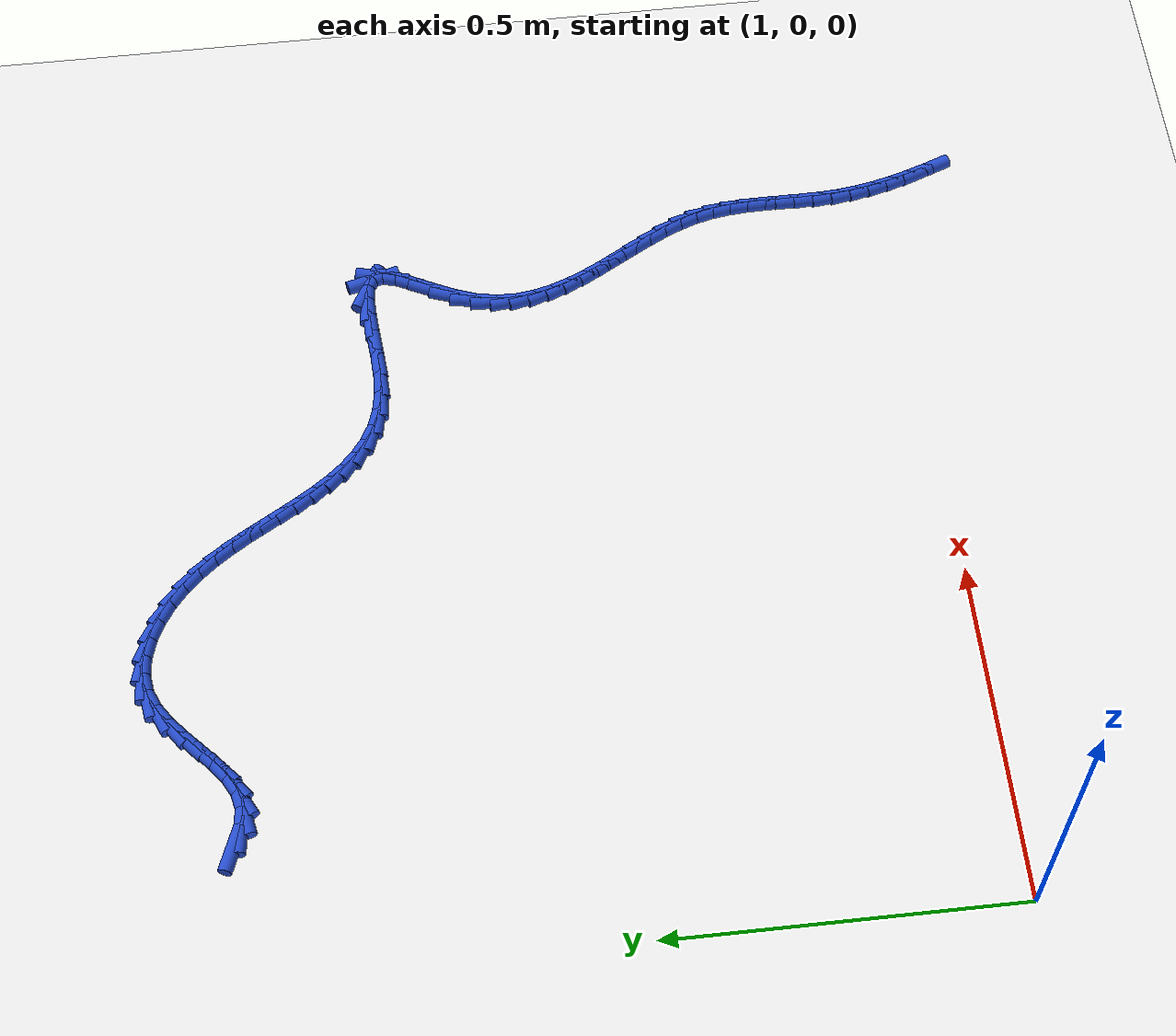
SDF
<sdf version="1.6">
 <world name="default">
  <model name="ground_plane">
   <static>1</static>
   <link name="link">
    <collision name="collision">
     <geometry><plane><normal>0 0 1</normal><size>100 100</size></plane></geometry>
     <surface><friction><ode><mu>100</mu><mu2>50</mu2></ode></friction></surface>
    </collision>
    <visual name="visual">
     <cast_shadows>0</cast_shadows>
     <geometry><plane><normal>0 0 1</normal><size>100 100</size></plane></geometry>
     <material>
      <script><uri>file://media/materials/scripts/gazebo.material</uri><name>Gazebo/WhiteGlow</name></script>
     </material>
    </visual>
   </link>
  </model>
  <model name="line">
   <link name="link_66">
    <pose>1.1910183618027324 1.0386540105592135 0.01 0 1.57 -0.3715931306546923</pose>
    <collision name="collision">
     <geometry><cylinder><radius>0.01</radius><length>0.08</length></cylinder></geometry>
    </collision>
    <visual name="visual">
     <material>
      <script><name>Gazebo/Blue</name><uri>file://media/materials/scripts/gazebo.material</uri></script>
     </material>
     <geometry><cylinder><radius>0.01</radius><length>0.08</length></cylinder></geometry>
    </visual>
   </link>
   <link name="link_67">
    <pose>1.2167984841323702 1.0286075717991898 0.01 0 1.57 -0.13413319737967627</pose>
    <collision name="collision">
     <geometry><cylinder><radius>0.01</radius><length>0.08</length></cylinder></geometry>
    </collision>
    <visual name="visual">
     <material>
      <script><name>Gazebo/Blue</name><uri>file://media/materials/scripts/gazebo.material</uri></script>
     </material>
     <geometry><cylinder><radius>0.01</radius><length>0.08</length></cylinder></geometry>
    </visual>
   </link>
   <link name="link_68">
    <pose>1.2416910758406217 1.0252484794003158 0.01 0 1.57 0.20399295976134277</pose>
    <collision name="collision">
     <geometry><cylinder><radius>0.01</radius><length>0.08</length></cylinder></geometry>
    </collision>
    <visual name="visual">
     <material>
      <script><name>Gazebo/Blue</name><uri>file://media/materials/scripts/gazebo.material</uri></script>
     </material>
     <geometry><cylinder><radius>0.01</radius><length>0.08</length></cylinder></geometry>
    </visual>
   </link>
   <link name="link_69">
    <pose>1.2654495829845958 1.0301634127264439 0.01 0 1.57 0.4839980641135124</pose>
    <collision name="collision">
     <geometry><cylinder><radius>0.01</radius><length>0.08</length></cylinder></geometry>
    </collision>
    <visual name="visual">
     <material>
      <script><name>Gazebo/Blue</name><uri>file://media/materials/scripts/gazebo.material</uri></script>
     </material>
     <geometry><cylinder><radius>0.01</radius><length>0.08</length></cylinder></geometry>
    </visual>
   </link>
   <link name="link_70">
    <pose>1.2882910963571448 1.0421712683179045 0.01 0 1.57 0.6521079023328774</pose>
    <collision name="collision">
     <geometry><cylinder><radius>0.01</radius><length>0.08</length></cylinder></geometry>
    </collision>
    <visual name="visual">
     <material>
      <script><name>Gazebo/Blue</name><uri>file://media/materials/scripts/gazebo.material</uri></script>
     </material>
     <geometry><cylinder><radius>0.01</radius><length>0.08</length></cylinder></geometry>
    </visual>
   </link>
   <link name="link_71">
    <pose>1.3105832693853003 1.0591921410235174 0.01 0 1.57 0.7341628290892473</pose>
    <collision name="collision">
     <geometry><cylinder><radius>0.01</radius><length>0.08</length></cylinder></geometry>
    </collision>
    <visual name="visual">
     <material>
      <script><name>Gazebo/Blue</name><uri>file://media/materials/scripts/gazebo.material</uri></script>
     </material>
     <geometry><cylinder><radius>0.01</radius><length>0.08</length></cylinder></geometry>
    </visual>
   </link>
   <link name="link_72">
    <pose>1.3326938348922361 1.079145651727313 0.01 0 1.57 0.7508217838398705</pose>
    <collision name="collision">
     <geometry><cylinder><radius>0.01</radius><length>0.08</length></cylinder></geometry>
    </collision>
    <visual name="visual">
     <material>
      <script><name>Gazebo/Blue</name><uri>file://media/materials/scripts/gazebo.material</uri></script>
     </material>
     <geometry><cylinder><radius>0.01</radius><length>0.08</length></cylinder></geometry>
    </visual>
   </link>
   <link name="link_73">
    <pose>1.3549905257011259 1.0999514213133232 0.01 0 1.57 0.7084109012326739</pose>
    <collision name="collision">
     <geometry><cylinder><radius>0.01</radius><length>0.08</length></cylinder></geometry>
    </collision>
    <visual name="visual">
     <material>
      <script><name>Gazebo/Blue</name><uri>file://media/materials/scripts/gazebo.material</uri></script>
     </material>
     <geometry><cylinder><radius>0.01</radius><length>0.08</length></cylinder></geometry>
    </visual>
   </link>
   <link name="link_74">
    <pose>1.3778410746351433 1.1195290706655772 0.01 0 1.57 0.6001648621683521</pose>
    <collision name="collision">
     <geometry><cylinder><radius>0.01</radius><length>0.08</length></cylinder></geometry>
    </collision>
    <visual name="visual">
     <material>
      <script><name>Gazebo/Blue</name><uri>file://media/materials/scripts/gazebo.material</uri></script>
     </material>
     <geometry><cylinder><radius>0.01</radius><length>0.08</length></cylinder></geometry>
    </visual>
   </link>
   <link name="link_75">
    <pose>1.4016132145174631 1.1357982206681072 0.01 0 1.57 0.4095901310267011</pose>
    <collision name="collision">
     <geometry><cylinder><radius>0.01</radius><length>0.08</length></cylinder></geometry>
    </collision>
    <visual name="visual">
     <material>
      <script><name>Gazebo/Blue</name><uri>file://media/materials/scripts/gazebo.material</uri></script>
     </material>
     <geometry><cylinder><radius>0.01</radius><length>0.08</length></cylinder></geometry>
    </visual>
   </link>
   <link name="link_76">
    <pose>1.4266746741748833 1.1466785029190596 0.01 0 1.57 0.14798488247998606</pose>
    <collision name="collision">
     <geometry><cylinder><radius>0.01</radius><length>0.08</length></cylinder></geometry>
    </collision>
    <visual name="visual">
     <material>
      <script><name>Gazebo/Blue</name><uri>file://media/materials/scripts/gazebo.material</uri></script>
     </material>
     <geometry><cylinder><radius>0.01</radius><length>0.08</length></cylinder></geometry>
    </visual>
   </link>
   <link name="link_77">
    <pose>1.4531910620310113 1.1506314253849277 0.01 0 1.57 -0.09168752158299566</pose>
    <collision name="collision">
     <geometry><cylinder><radius>0.01</radius><length>0.08</length></cylinder></geometry>
    </collision>
    <visual name="visual">
     <material>
      <script><name>Gazebo/Blue</name><uri>file://media/materials/scripts/gazebo.material</uri></script>
     </material>
     <geometry><cylinder><radius>0.01</radius><length>0.08</length></cylinder></geometry>
    </visual>
   </link>
   <link name="link_78">
    <pose>1.4805841235058557 1.1481127617103806 0.01 0 1.57 -0.28543511425418</pose>
    <collision name="collision">
     <geometry><cylinder><radius>0.01</radius><length>0.08</length></cylinder></geometry>
    </collision>
    <visual name="visual">
     <material>
      <script><name>Gazebo/Blue</name><uri>file://media/materials/scripts/gazebo.material</uri></script>
     </material>
     <geometry><cylinder><radius>0.01</radius><length>0.08</length></cylinder></geometry>
    </visual>
   </link>
   <link name="link_79">
    <pose>1.5081045207154684 1.140036952740264 0.01 0 1.57 -0.4416807370855802</pose>
    <collision name="collision">
     <geometry><cylinder><radius>0.01</radius><length>0.08</length></cylinder></geometry>
    </collision>
    <visual name="visual">
     <material>
      <script><name>Gazebo/Blue</name><uri>file://media/materials/scripts/gazebo.material</uri></script>
     </material>
     <geometry><cylinder><radius>0.01</radius><length>0.08</length></cylinder></geometry>
    </visual>
   </link>
   <link name="link_80">
    <pose>1.5350029157759055 1.1273184393194247 0.01 0 1.57 -0.5723493183631833</pose>
    <collision name="collision">
     <geometry><cylinder><radius>0.01</radius><length>0.08</length></cylinder></geometry>
    </collision>
    <visual name="visual">
     <material>
      <script><name>Gazebo/Blue</name><uri>file://media/materials/scripts/gazebo.material</uri></script>
     </material>
     <geometry><cylinder><radius>0.01</radius><length>0.08</length></cylinder></geometry>
    </visual>
   </link>
   <link name="link_81">
    <pose>1.5605299708032205 1.110871662292709 0.01 0 1.57 -0.6884382442593434</pose>
    <collision name="collision">
     <geometry><cylinder><radius>0.01</radius><length>0.08</length></cylinder></geometry>
    </collision>
    <visual name="visual">
     <material>
      <script><name>Gazebo/Blue</name><uri>file://media/materials/scripts/gazebo.material</uri></script>
     </material>
     <geometry><cylinder><radius>0.01</radius><length>0.08</length></cylinder></geometry>
    </visual>
   </link>
   <link name="link_82">
    <pose>1.5839458589698256 1.0916070858261908 0.01 0 1.57 -0.7934648081408842</pose>
    <collision name="collision">
     <geometry><cylinder><radius>0.01</radius><length>0.08</length></cylinder></geometry>
    </collision>
    <visual name="visual">
     <material>
      <script><name>Gazebo/Blue</name><uri>file://media/materials/scripts/gazebo.material</uri></script>
     </material>
     <geometry><cylinder><radius>0.01</radius><length>0.08</length></cylinder></geometry>
    </visual>
   </link>
   <link name="link_83">
    <pose>1.6049663762186324 1.07024467312244 0.01 0 1.57 -0.8808923579072564</pose>
    <collision name="collision">
     <geometry><cylinder><radius>0.01</radius><length>0.08</length></cylinder></geometry>
    </collision>
    <visual name="visual">
     <material>
      <script><name>Gazebo/Blue</name><uri>file://media/materials/scripts/gazebo.material</uri></script>
     </material>
     <geometry><cylinder><radius>0.01</radius><length>0.08</length></cylinder></geometry>
    </visual>
   </link>
   <link name="link_84">
    <pose>1.6239543033740718 1.0472338757869752 0.01 0 1.57 -0.9489089492983109</pose>
    <collision name="collision">
     <geometry><cylinder><radius>0.01</radius><length>0.08</length></cylinder></geometry>
    </collision>
    <visual name="visual">
     <material>
      <script><name>Gazebo/Blue</name><uri>file://media/materials/scripts/gazebo.material</uri></script>
     </material>
     <geometry><cylinder><radius>0.01</radius><length>0.08</length></cylinder></geometry>
    </visual>
   </link>
   <link name="link_85">
    <pose>1.6413216860974906 1.0230035472473766 0.01 0 1.57 -0.997370352363694</pose>
    <collision name="collision">
     <geometry><cylinder><radius>0.01</radius><length>0.08</length></cylinder></geometry>
    </collision>
    <visual name="visual">
     <material>
      <script><name>Gazebo/Blue</name><uri>file://media/materials/scripts/gazebo.material</uri></script>
     </material>
     <geometry><cylinder><radius>0.01</radius><length>0.08</length></cylinder></geometry>
    </visual>
   </link>
   <link name="link_86">
    <pose>1.6574805700502366 0.9979825409312242 0.01 0 1.57 -1.026540679589571</pose>
    <collision name="collision">
     <geometry><cylinder><radius>0.01</radius><length>0.08</length></cylinder></geometry>
    </collision>
    <visual name="visual">
     <material>
      <script><name>Gazebo/Blue</name><uri>file://media/materials/scripts/gazebo.material</uri></script>
     </material>
     <geometry><cylinder><radius>0.01</radius><length>0.08</length></cylinder></geometry>
    </visual>
   </link>
   <link name="link_87">
    <pose>1.6728430008936561 0.9725997102660979 0.01 0 1.57 -1.036541221692808</pose>
    <collision name="collision">
     <geometry><cylinder><radius>0.01</radius><length>0.08</length></cylinder></geometry>
    </collision>
    <visual name="visual">
     <material>
      <script><name>Gazebo/Blue</name><uri>file://media/materials/scripts/gazebo.material</uri></script>
     </material>
     <geometry><cylinder><radius>0.01</radius><length>0.08</length></cylinder></geometry>
    </visual>
   </link>
   <link name="link_88">
    <pose>1.6878210242890965 0.9472839086795792 0.01 0 1.57 -1.0270149523643854</pose>
    <collision name="collision">
     <geometry><cylinder><radius>0.01</radius><length>0.08</length></cylinder></geometry>
    </collision>
    <visual name="visual">
     <material>
      <script><name>Gazebo/Blue</name><uri>file://media/materials/scripts/gazebo.material</uri></script>
     </material>
     <geometry><cylinder><radius>0.01</radius><length>0.08</length></cylinder></geometry>
    </visual>
   </link>
   <link name="link_89">
    <pose>1.7028266858979044 0.9224639895992472 0.01 0 1.57 -0.9969708114338279</pose>
    <collision name="collision">
     <geometry><cylinder><radius>0.01</radius><length>0.08</length></cylinder></geometry>
    </collision>
    <visual name="visual">
     <material>
      <script><name>Gazebo/Blue</name><uri>file://media/materials/scripts/gazebo.material</uri></script>
     </material>
     <geometry><cylinder><radius>0.01</radius><length>0.08</length></cylinder></geometry>
    </visual>
   </link>
   <link name="link_90">
    <pose>1.7182720313814273 0.8985688064526828 0.01 0 1.57 -0.9448148069161593</pose>
    <collision name="collision">
     <geometry><cylinder><radius>0.01</radius><length>0.08</length></cylinder></geometry>
    </collision>
    <visual name="visual">
     <material>
      <script><name>Gazebo/Blue</name><uri>file://media/materials/scripts/gazebo.material</uri></script>
     </material>
     <geometry><cylinder><radius>0.01</radius><length>0.08</length></cylinder></geometry>
    </visual>
   </link>
   <link name="link_91">
    <pose>1.7345691064010125 0.8760272126674655 0.01 0 1.57 -0.8686681279111225</pose>
    <collision name="collision">
     <geometry><cylinder><radius>0.01</radius><length>0.08</length></cylinder></geometry>
    </collision>
    <visual name="visual">
     <material>
      <script><name>Gazebo/Blue</name><uri>file://media/materials/scripts/gazebo.material</uri></script>
     </material>
     <geometry><cylinder><radius>0.01</radius><length>0.08</length></cylinder></geometry>
    </visual>
   </link>
   <link name="link_92">
    <pose>1.7521299566180073 0.8552680616711765 0.01 0 1.57 -0.7671700663345805</pose>
    <collision name="collision">
     <geometry><cylinder><radius>0.01</radius><length>0.08</length></cylinder></geometry>
    </collision>
    <visual name="visual">
     <material>
      <script><name>Gazebo/Blue</name><uri>file://media/materials/scripts/gazebo.material</uri></script>
     </material>
     <geometry><cylinder><radius>0.01</radius><length>0.08</length></cylinder></geometry>
    </visual>
   </link>
   <link name="link_93">
    <pose>1.7713666276937572 0.8367202068913953 0.01 0 1.57 -0.6409241412388688</pose>
    <collision name="collision">
     <geometry><cylinder><radius>0.01</radius><length>0.08</length></cylinder></geometry>
    </collision>
    <visual name="visual">
     <material>
      <script><name>Gazebo/Blue</name><uri>file://media/materials/scripts/gazebo.material</uri></script>
     </material>
     <geometry><cylinder><radius>0.01</radius><length>0.08</length></cylinder></geometry>
    </visual>
   </link>
   <link name="link_94">
    <pose>1.792691165289611 0.8208125017557025 0.01 0 1.57 -0.4942716544508214</pose>
    <collision name="collision">
     <geometry><cylinder><radius>0.01</radius><length>0.08</length></cylinder></geometry>
    </collision>
    <visual name="visual">
     <material>
      <script><name>Gazebo/Blue</name><uri>file://media/materials/scripts/gazebo.material</uri></script>
     </material>
     <geometry><cylinder><radius>0.01</radius><length>0.08</length></cylinder></geometry>
    </visual>
   </link>
   <link name="link_95">
    <pose>1.8165156150669155 0.807973799691678 0.01 0 1.57 -0.33611168976586175</pose>
    <collision name="collision">
     <geometry><cylinder><radius>0.01</radius><length>0.08</length></cylinder></geometry>
    </collision>
    <visual name="visual">
     <material>
      <script><name>Gazebo/Blue</name><uri>file://media/materials/scripts/gazebo.material</uri></script>
     </material>
     <geometry><cylinder><radius>0.01</radius><length>0.08</length></cylinder></geometry>
    </visual>
   </link>
   <link name="link_96">
    <pose>1.8432520226870168 0.7986329541269026 0.01 0 1.57 -0.17819803377632554</pose>
    <collision name="collision">
     <geometry><cylinder><radius>0.01</radius><length>0.08</length></cylinder></geometry>
    </collision>
    <visual name="visual">
     <material>
      <script><name>Gazebo/Blue</name><uri>file://media/materials/scripts/gazebo.material</uri></script>
     </material>
     <geometry><cylinder><radius>0.01</radius><length>0.08</length></cylinder></geometry>
    </visual>
   </link>
   <link name="link_97">
    <pose>1.8733124338112628 0.7932188184889559 0.01 0 1.57 -0.03842313870099196</pose>
    <collision name="collision">
     <geometry><cylinder><radius>0.01</radius><length>0.08</length></cylinder></geometry>
    </collision>
    <visual name="visual">
     <material>
      <script><name>Gazebo/Blue</name><uri>file://media/materials/scripts/gazebo.material</uri></script>
     </material>
     <geometry><cylinder><radius>0.01</radius><length>0.08</length></cylinder></geometry>
    </visual>
   </link>
   <link name="link_98">
    <pose>1.9068307222204495 0.7919303064890729 0.01 0 1.57 0.0477360645340267</pose>
    <collision name="collision">
     <geometry><cylinder><radius>0.01</radius><length>0.08</length></cylinder></geometry>
    </collision>
    <visual name="visual">
     <material>
      <script><name>Gazebo/Blue</name><uri>file://media/materials/scripts/gazebo.material</uri></script>
     </material>
     <geometry><cylinder><radius>0.01</radius><length>0.08</length></cylinder></geometry>
    </visual>
   </link>
   <link name="link_99">
    <pose>1.942318869157093 0.7936256589082943 0.01 0 1.57 0.08606656771428094</pose>
    <collision name="collision">
     <geometry><cylinder><radius>0.01</radius><length>0.08</length></cylinder></geometry>
    </collision>
    <visual name="visual">
     <material>
      <script><name>Gazebo/Blue</name><uri>file://media/materials/scripts/gazebo.material</uri></script>
     </material>
     <geometry><cylinder><radius>0.01</radius><length>0.08</length></cylinder></geometry>
    </visual>
   </link>
   <link name="link_100">
    <pose>1.9777026614885362 0.796678562272629 0.01 0 1.57 0.08363304121124238</pose>
    <collision name="collision">
     <geometry><cylinder><radius>0.01</radius><length>0.08</length></cylinder></geometry>
    </collision>
    <visual name="visual">
     <material>
      <script><name>Gazebo/Blue</name><uri>file://media/materials/scripts/gazebo.material</uri></script>
     </material>
     <geometry><cylinder><radius>0.01</radius><length>0.08</length></cylinder></geometry>
    </visual>
   </link>
   <link name="link_101">
    <pose>2.010907086298666 0.7994620419989188 0.01 0 1.57 0.030632216556217146</pose>
    <collision name="collision">
     <geometry><cylinder><radius>0.01</radius><length>0.08</length></cylinder></geometry>
    </collision>
    <visual name="visual">
     <material>
      <script><name>Gazebo/Blue</name><uri>file://media/materials/scripts/gazebo.material</uri></script>
     </material>
     <geometry><cylinder><radius>0.01</radius><length>0.08</length></cylinder></geometry>
    </visual>
   </link>
   <link name="link_102">
    <pose>2.039857130671373 0.8003491235040058 0.01 0 1.57 -0.1160201759714238</pose>
    <collision name="collision">
     <geometry><cylinder><radius>0.01</radius><length>0.08</length></cylinder></geometry>
    </collision>
    <visual name="visual">
     <material>
      <script><name>Gazebo/Blue</name><uri>file://media/materials/scripts/gazebo.material</uri></script>
     </material>
     <geometry><cylinder><radius>0.01</radius><length>0.08</length></cylinder></geometry>
    </visual>
   </link>
   <link name="link_103">
    <pose>2.0624777816905455 0.7977128322047315 0.01 0 1.57 -0.5010973828207661</pose>
    <collision name="collision">
     <geometry><cylinder><radius>0.01</radius><length>0.08</length></cylinder></geometry>
    </collision>
    <visual name="visual">
     <material>
      <script><name>Gazebo/Blue</name><uri>file://media/materials/scripts/gazebo.material</uri></script>
     </material>
     <geometry><cylinder><radius>0.01</radius><length>0.08</length></cylinder></geometry>
    </visual>
   </link>
   <link name="link_104">
    <pose>2.0766940264400726 0.789926193517938 0.01 0 1.57 -1.3069574812635303</pose>
    <collision name="collision">
     <geometry><cylinder><radius>0.01</radius><length>0.08</length></cylinder></geometry>
    </collision>
    <visual name="visual">
     <material>
      <script><name>Gazebo/Blue</name><uri>file://media/materials/scripts/gazebo.material</uri></script>
     </material>
     <geometry><cylinder><radius>0.01</radius><length>0.08</length></cylinder></geometry>
    </visual>
   </link>
   <link name="link_105">
    <pose>2.0806001867590904 0.7754662313333474 0.01 0 1.57 1.3137014827093738</pose>
    <collision name="collision">
     <geometry><cylinder><radius>0.01</radius><length>0.08</length></cylinder></geometry>
    </collision>
    <visual name="visual">
     <material>
      <script><name>Gazebo/Blue</name><uri>file://media/materials/scripts/gazebo.material</uri></script>
     </material>
     <geometry><cylinder><radius>0.01</radius><length>0.08</length></cylinder></geometry>
    </visual>
   </link>
   <link name="link_106">
    <pose>2.075096654255533 0.7545333426918408 0.01 0 1.57 1.1447245756426454</pose>
    <collision name="collision">
     <geometry><cylinder><radius>0.01</radius><length>0.08</length></cylinder></geometry>
    </collision>
    <visual name="visual">
     <material>
      <script><name>Gazebo/Blue</name><uri>file://media/materials/scripts/gazebo.material</uri></script>
     </material>
     <geometry><cylinder><radius>0.01</radius><length>0.08</length></cylinder></geometry>
    </visual>
   </link>
   <link name="link_107">
    <pose>2.063392280013087 0.7287456859192395 0.01 0 1.57 1.103382982573006</pose>
    <collision name="collision">
     <geometry><cylinder><radius>0.01</radius><length>0.08</length></cylinder></geometry>
    </collision>
    <visual name="visual">
     <material>
      <script><name>Gazebo/Blue</name><uri>file://media/materials/scripts/gazebo.material</uri></script>
     </material>
     <geometry><cylinder><radius>0.01</radius><length>0.08</length></cylinder></geometry>
    </visual>
   </link>
   <link name="link_108">
    <pose>2.0487645375131205 0.6997635644081249 0.01 0 1.57 1.133289456626619</pose>
    <collision name="collision">
     <geometry><cylinder><radius>0.01</radius><length>0.08</length></cylinder></geometry>
    </collision>
    <visual name="visual">
     <material>
      <script><name>Gazebo/Blue</name><uri>file://media/materials/scripts/gazebo.material</uri></script>
     </material>
     <geometry><cylinder><radius>0.01</radius><length>0.08</length></cylinder></geometry>
    </visual>
   </link>
   <link name="link_109">
    <pose>2.034490900237006 0.669247281551079 0.01 0 1.57 1.2328665089875364</pose>
    <collision name="collision">
     <geometry><cylinder><radius>0.01</radius><length>0.08</length></cylinder></geometry>
    </collision>
    <visual name="visual">
     <material>
      <script><name>Gazebo/Blue</name><uri>file://media/materials/scripts/gazebo.material</uri></script>
     </material>
     <geometry><cylinder><radius>0.01</radius><length>0.08</length></cylinder></geometry>
    </visual>
   </link>
   <link name="link_110">
    <pose>2.0238044055306217 0.6388368939551164 0.01 0 1.57 1.3856866202806233</pose>
    <collision name="collision">
     <geometry><cylinder><radius>0.01</radius><length>0.08</length></cylinder></geometry>
    </collision>
    <visual name="visual">
     <material>
      <script><name>Gazebo/Blue</name><uri>file://media/materials/scripts/gazebo.material</uri></script>
     </material>
     <geometry><cylinder><radius>0.01</radius><length>0.08</length></cylinder></geometry>
    </visual>
   </link>
   <link name="link_111">
    <pose>2.0182968636586724 0.6094246530364503 0.01 0 1.57 1.5419959441762154</pose>
    <collision name="collision">
     <geometry><cylinder><radius>0.01</radius><length>0.08</length></cylinder></geometry>
    </collision>
    <visual name="visual">
     <material>
      <script><name>Gazebo/Blue</name><uri>file://media/materials/scripts/gazebo.material</uri></script>
     </material>
     <geometry><cylinder><radius>0.01</radius><length>0.08</length></cylinder></geometry>
    </visual>
   </link>
   <link name="link_112">
    <pose>2.0174766573955187 0.5809535217735091 0.01 0 1.57 -1.454104599401621</pose>
    <collision name="collision">
     <geometry><cylinder><radius>0.01</radius><length>0.08</length></cylinder></geometry>
    </collision>
    <visual name="visual">
     <material>
      <script><name>Gazebo/Blue</name><uri>file://media/materials/scripts/gazebo.material</uri></script>
     </material>
     <geometry><cylinder><radius>0.01</radius><length>0.08</length></cylinder></geometry>
    </visual>
   </link>
   <link name="link_113">
    <pose>2.020717712371714 0.5533051993798026 0.01 0 1.57 -1.327904543977467</pose>
    <collision name="collision">
     <geometry><cylinder><radius>0.01</radius><length>0.08</length></cylinder></geometry>
    </collision>
    <visual name="visual">
     <material>
      <script><name>Gazebo/Blue</name><uri>file://media/materials/scripts/gazebo.material</uri></script>
     </material>
     <geometry><cylinder><radius>0.01</radius><length>0.08</length></cylinder></geometry>
    </visual>
   </link>
   <link name="link_114">
    <pose>2.0273939542178123 0.5263613850688412 0.01 0 1.57 -1.2253544147841735</pose>
    <collision name="collision">
     <geometry><cylinder><radius>0.01</radius><length>0.08</length></cylinder></geometry>
    </collision>
    <visual name="visual">
     <material>
      <script><name>Gazebo/Blue</name><uri>file://media/materials/scripts/gazebo.material</uri></script>
     </material>
     <geometry><cylinder><radius>0.01</radius><length>0.08</length></cylinder></geometry>
    </visual>
   </link>
   <link name="link_115">
    <pose>2.0368793085643655 0.5000037780541345 0.01 0 1.57 -1.1473634998231654</pose>
    <collision name="collision">
     <geometry><cylinder><radius>0.01</radius><length>0.08</length></cylinder></geometry>
    </collision>
    <visual name="visual">
     <material>
      <script><name>Gazebo/Blue</name><uri>file://media/materials/scripts/gazebo.material</uri></script>
     </material>
     <geometry><cylinder><radius>0.01</radius><length>0.08</length></cylinder></geometry>
    </visual>
   </link>
   <link name="link_116">
    <pose>2.048547701041928 0.4741140775491926 0.01 0 1.57 -1.0929888685246674</pose>
    <collision name="collision">
     <geometry><cylinder><radius>0.01</radius><length>0.08</length></cylinder></geometry>
    </collision>
    <visual name="visual">
     <material>
      <script><name>Gazebo/Blue</name><uri>file://media/materials/scripts/gazebo.material</uri></script>
     </material>
     <geometry><cylinder><radius>0.01</radius><length>0.08</length></cylinder></geometry>
    </visual>
   </link>
   <link name="link_117">
    <pose>2.061773057281054 0.4485739827675251 0.01 0 1.57 -1.0608097661095421</pose>
    <collision name="collision">
     <geometry><cylinder><radius>0.01</radius><length>0.08</length></cylinder></geometry>
    </collision>
    <visual name="visual">
     <material>
      <script><name>Gazebo/Blue</name><uri>file://media/materials/scripts/gazebo.material</uri></script>
     </material>
     <geometry><cylinder><radius>0.01</radius><length>0.08</length></cylinder></geometry>
    </visual>
   </link>
   <link name="link_118">
    <pose>2.075929302912296 0.4232651929226425 0.01 0 1.57 -1.049753315446775</pose>
    <collision name="collision">
     <geometry><cylinder><radius>0.01</radius><length>0.08</length></cylinder></geometry>
    </collision>
    <visual name="visual">
     <material>
      <script><name>Gazebo/Blue</name><uri>file://media/materials/scripts/gazebo.material</uri></script>
     </material>
     <geometry><cylinder><radius>0.01</radius><length>0.08</length></cylinder></geometry>
    </visual>
   </link>
   <link name="link_119">
    <pose>2.090390363566208 0.3980694072280546 0.01 0 1.57 -1.0594868783014075</pose>
    <collision name="collision">
     <geometry><cylinder><radius>0.01</radius><length>0.08</length></cylinder></geometry>
    </collision>
    <visual name="visual">
     <material>
      <script><name>Gazebo/Blue</name><uri>file://media/materials/scripts/gazebo.material</uri></script>
     </material>
     <geometry><cylinder><radius>0.01</radius><length>0.08</length></cylinder></geometry>
    </visual>
   </link>
   <link name="link_120">
    <pose>2.1045301648733425 0.3728683248972711 0.01 0 1.57 -1.0905427085954462</pose>
    <collision name="collision">
     <geometry><cylinder><radius>0.01</radius><length>0.08</length></cylinder></geometry>
    </collision>
    <visual name="visual">
     <material>
      <script><name>Gazebo/Blue</name><uri>file://media/materials/scripts/gazebo.material</uri></script>
     </material>
     <geometry><cylinder><radius>0.01</radius><length>0.08</length></cylinder></geometry>
    </visual>
   </link>
   <link name="link_121">
    <pose>2.117722632464254 0.3475436451438021 0.01 0 1.57 -1.1442373080619719</pose>
    <collision name="collision">
     <geometry><cylinder><radius>0.01</radius><length>0.08</length></cylinder></geometry>
    </collision>
    <visual name="visual">
     <material>
      <script><name>Gazebo/Blue</name><uri>file://media/materials/scripts/gazebo.material</uri></script>
     </material>
     <geometry><cylinder><radius>0.01</radius><length>0.08</length></cylinder></geometry>
    </visual>
   </link>
   <link name="link_122">
    <pose>2.129341691969495 0.32197706718115715 0.01 0 1.57 -1.2223095226351568</pose>
    <collision name="collision">
     <geometry><cylinder><radius>0.01</radius><length>0.08</length></cylinder></geometry>
    </collision>
    <visual name="visual">
     <material>
      <script><name>Gazebo/Blue</name><uri>file://media/materials/scripts/gazebo.material</uri></script>
     </material>
     <geometry><cylinder><radius>0.01</radius><length>0.08</length></cylinder></geometry>
    </visual>
   </link>
   <link name="link_123">
    <pose>2.13876126901962 0.29605029022284696 0.01 0 1.57 -1.3233307910206304</pose>
    <collision name="collision">
     <geometry><cylinder><radius>0.01</radius><length>0.08</length></cylinder></geometry>
    </collision>
    <visual name="visual">
     <material>
      <script><name>Gazebo/Blue</name><uri>file://media/materials/scripts/gazebo.material</uri></script>
     </material>
     <geometry><cylinder><radius>0.01</radius><length>0.08</length></cylinder></geometry>
    </visual>
   </link>
   <link name="link_124">
    <pose>2.1454296553817884 0.26965588685638103 0.01 0 1.57 -1.4191461789783861</pose>
    <collision name="collision">
     <geometry><cylinder><radius>0.01</radius><length>0.08</length></cylinder></geometry>
    </collision>
    <visual name="visual">
     <material>
      <script><name>Gazebo/Blue</name><uri>file://media/materials/scripts/gazebo.material</uri></script>
     </material>
     <geometry><cylinder><radius>0.01</radius><length>0.08</length></cylinder></geometry>
    </visual>
   </link>
   <link name="link_125">
    <pose>2.1495346964258712 0.24279456279655345 0.01 0 1.57 -1.491983161174006</pose>
    <collision name="collision">
     <geometry><cylinder><radius>0.01</radius><length>0.08</length></cylinder></geometry>
    </collision>
    <visual name="visual">
     <material>
      <script><name>Gazebo/Blue</name><uri>file://media/materials/scripts/gazebo.material</uri></script>
     </material>
     <geometry><cylinder><radius>0.01</radius><length>0.08</length></cylinder></geometry>
    </visual>
   </link>
   <link name="link_126">
    <pose>2.151688042887975 0.21552899005707488 0.01 0 1.57 -1.5411627957571183</pose>
    <collision name="collision">
     <geometry><cylinder><radius>0.01</radius><length>0.08</length></cylinder></geometry>
    </collision>
    <visual name="visual">
     <material>
      <script><name>Gazebo/Blue</name><uri>file://media/materials/scripts/gazebo.material</uri></script>
     </material>
     <geometry><cylinder><radius>0.01</radius><length>0.08</length></cylinder></geometry>
    </visual>
   </link>
   <link name="link_127">
    <pose>2.1525063580357147 0.18792257355418907 0.01 0 1.57 -1.5672119346188256</pose>
    <collision name="collision">
     <geometry><cylinder><radius>0.01</radius><length>0.08</length></cylinder></geometry>
    </collision>
    <visual name="visual">
     <material>
      <script><name>Gazebo/Blue</name><uri>file://media/materials/scripts/gazebo.material</uri></script>
     </material>
     <geometry><cylinder><radius>0.01</radius><length>0.08</length></cylinder></geometry>
    </visual>
   </link>
   <link name="link_128">
    <pose>2.152606305136706 0.16003871820413829 0.01 0 1.57 1.5707337712726315</pose>
    <collision name="collision">
     <geometry><cylinder><radius>0.01</radius><length>0.08</length></cylinder></geometry>
    </collision>
    <visual name="visual">
     <material>
      <script><name>Gazebo/Blue</name><uri>file://media/materials/scripts/gazebo.material</uri></script>
     </material>
     <geometry><cylinder><radius>0.01</radius><length>0.08</length></cylinder></geometry>
    </visual>
   </link>
   <link name="link_129">
    <pose>2.1526045474585653 0.1319408289231654 0.01 0 1.57 -1.5526309718888143</pose>
    <collision name="collision">
     <geometry><cylinder><radius>0.01</radius><length>0.08</length></cylinder></geometry>
    </collision>
    <visual name="visual">
     <material>
      <script><name>Gazebo/Blue</name><uri>file://media/materials/scripts/gazebo.material</uri></script>
     </material>
     <geometry><cylinder><radius>0.01</radius><length>0.08</length></cylinder></geometry>
    </visual>
   </link>
   <link name="link_130">
    <pose>2.153117748268907 0.10369231062751318 0.01 0 1.57 -1.5128137673476822</pose>
    <collision name="collision">
     <geometry><cylinder><radius>0.01</radius><length>0.08</length></cylinder></geometry>
    </collision>
    <visual name="visual">
     <material>
      <script><name>Gazebo/Blue</name><uri>file://media/materials/scripts/gazebo.material</uri></script>
     </material>
     <geometry><cylinder><radius>0.01</radius><length>0.08</length></cylinder></geometry>
    </visual>
   </link>
   <link name="link_131">
    <pose>2.1547625708353464 0.07535656823342389 0.01 0 1.57 -1.4524160781617068</pose>
    <collision name="collision">
     <geometry><cylinder><radius>0.01</radius><length>0.08</length></cylinder></geometry>
    </collision>
    <visual name="visual">
     <material>
      <script><name>Gazebo/Blue</name><uri>file://media/materials/scripts/gazebo.material</uri></script>
     </material>
     <geometry><cylinder><radius>0.01</radius><length>0.08</length></cylinder></geometry>
    </visual>
   </link>
   <link name="link_132">
    <pose>2.1581356745549023 0.04699599071174725 0.01 0 1.57 -1.3868549807721637</pose>
    <collision name="collision">
     <geometry><cylinder><radius>0.01</radius><length>0.08</length></cylinder></geometry>
    </collision>
    <visual name="visual">
     <material>
      <script><name>Gazebo/Blue</name><uri>file://media/materials/scripts/gazebo.material</uri></script>
     </material>
     <geometry><cylinder><radius>0.01</radius><length>0.08</length></cylinder></geometry>
    </visual>
   </link>
   <link name="link_133">
    <pose>2.163409025272315 0.018651397934681645 0.01 0 1.57 -1.3303927096099792</pose>
    <collision name="collision">
     <geometry><cylinder><radius>0.01</radius><length>0.08</length></cylinder></geometry>
    </collision>
    <visual name="visual">
     <material>
      <script><name>Gazebo/Blue</name><uri>file://media/materials/scripts/gazebo.material</uri></script>
     </material>
     <geometry><cylinder><radius>0.01</radius><length>0.08</length></cylinder></geometry>
    </visual>
   </link>
   <link name="link_134">
    <pose>2.170348675625487 -0.009657005518541468 0.01 0 1.57 -1.283243766719361</pose>
    <collision name="collision">
     <geometry><cylinder><radius>0.01</radius><length>0.08</length></cylinder></geometry>
    </collision>
    <visual name="visual">
     <material>
      <script><name>Gazebo/Blue</name><uri>file://media/materials/scripts/gazebo.material</uri></script>
     </material>
     <geometry><cylinder><radius>0.01</radius><length>0.08</length></cylinder></geometry>
    </visual>
   </link>
   <link name="link_135">
    <pose>2.1787044328596012 -0.03790984013061245 0.01 0 1.57 -1.2449298372301025</pose>
    <collision name="collision">
     <geometry><cylinder><radius>0.01</radius><length>0.08</length></cylinder></geometry>
    </collision>
    <visual name="visual">
     <material>
      <script><name>Gazebo/Blue</name><uri>file://media/materials/scripts/gazebo.material</uri></script>
     </material>
     <geometry><cylinder><radius>0.01</radius><length>0.08</length></cylinder></geometry>
    </visual>
   </link>
   <link name="link_136">
    <pose>2.1882261042198374 -0.06608772638422031 0.01 0 1.57 -1.2149615469361235</pose>
    <collision name="collision">
     <geometry><cylinder><radius>0.01</radius><length>0.08</length></cylinder></geometry>
    </collision>
    <visual name="visual">
     <material>
      <script><name>Gazebo/Blue</name><uri>file://media/materials/scripts/gazebo.material</uri></script>
     </material>
     <geometry><cylinder><radius>0.01</radius><length>0.08</length></cylinder></geometry>
    </visual>
   </link>
  </model>
 </world>
</sdf>
